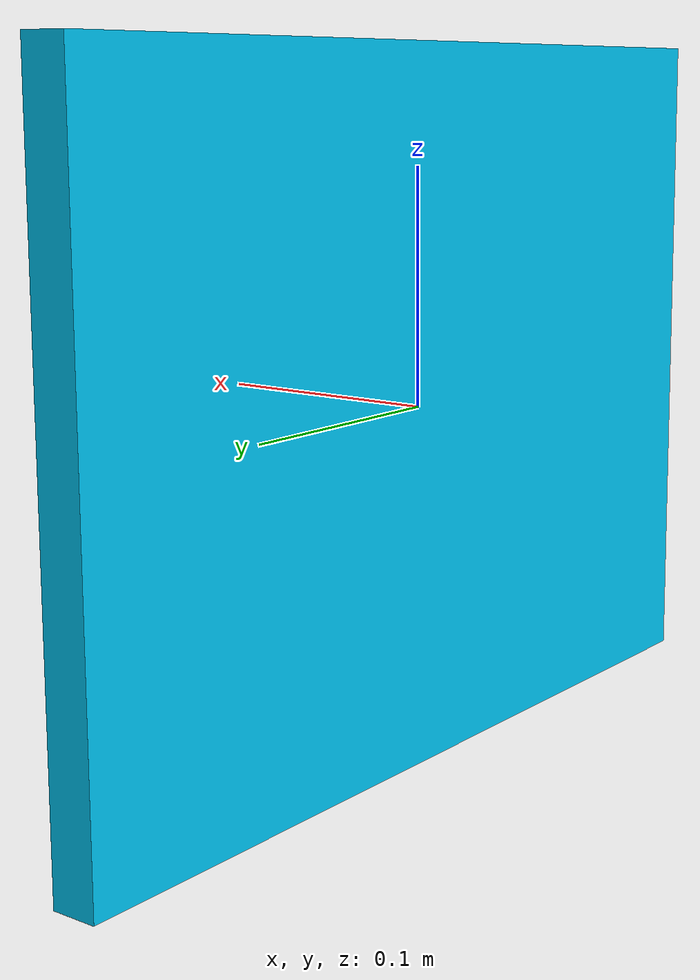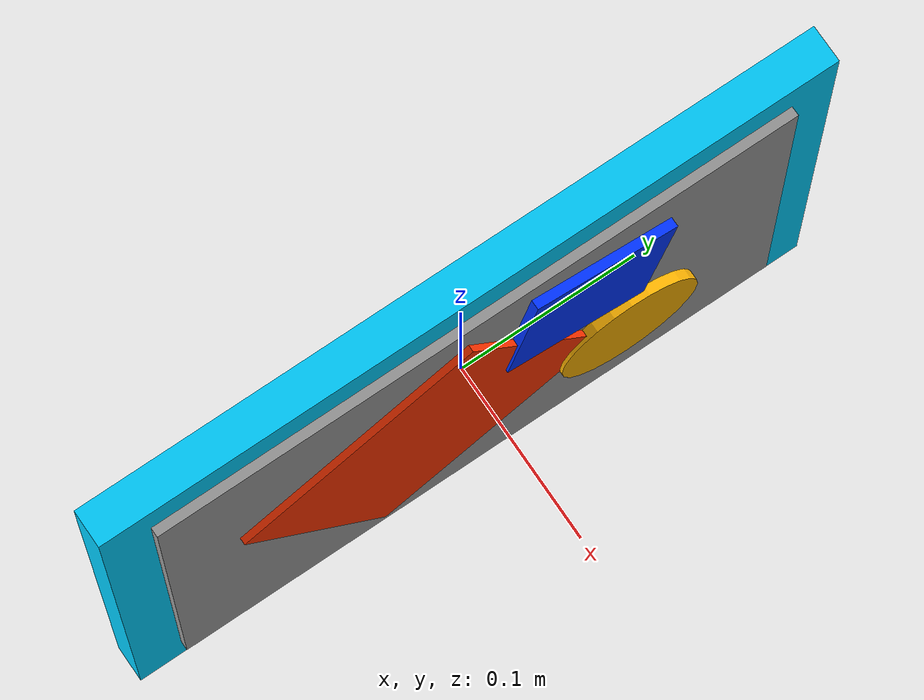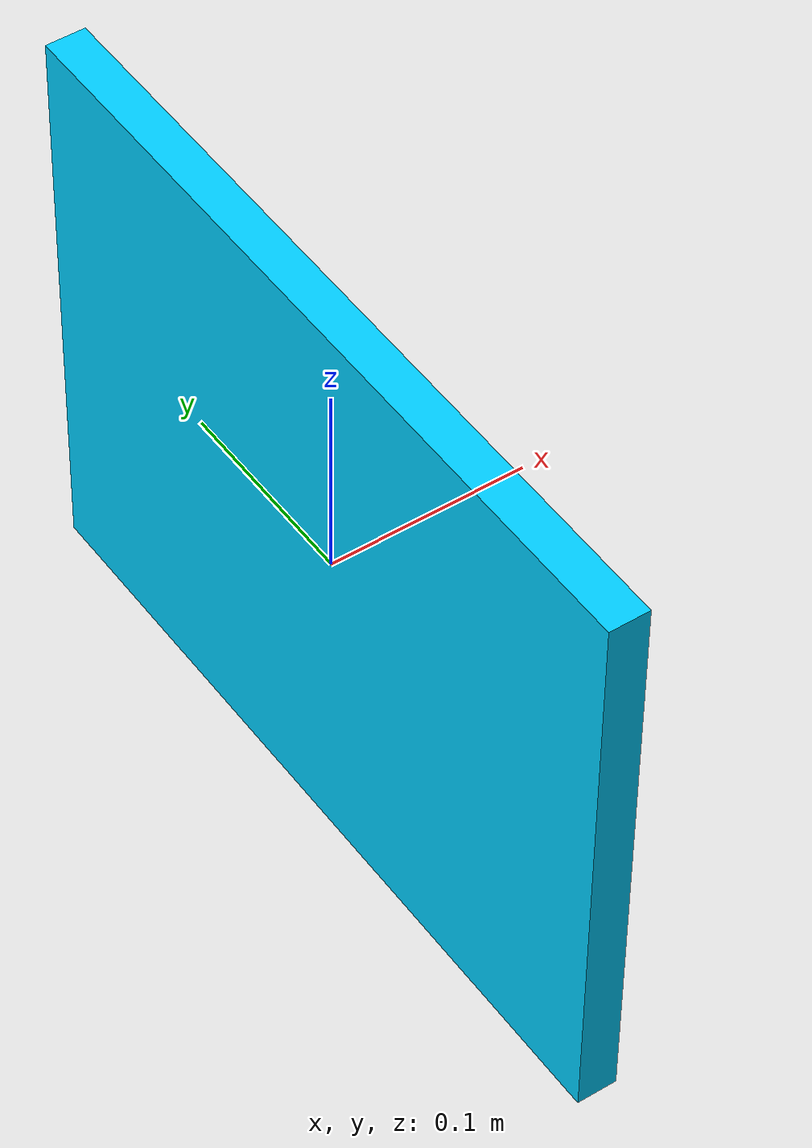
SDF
<?xml version='1.0'?>
<sdf version='1.7'>
  <model name='my_frame'>
    <link name='link'>
      <inertial>
        <mass>1</mass>
        <inertia>
          <ixx>0.166667</ixx>
          <ixy>0</ixy>
          <ixz>0</ixz>
          <iyy>0.166667</iyy>
          <iyz>0</iyz>
          <izz>0.166667</izz>
        </inertia>
        <pose>0 0 0 0 -0 0</pose>
      </inertial>
      <self_collide>0</self_collide>
      <enable_wind>0</enable_wind>
      <kinematic>0</kinematic>
      <pose>0 0 0 0 -0 0</pose>
      <gravity>0</gravity>
      <visual name='visual'>
        <geometry>
          <box>
            <size>0.02 0.4 0.3</size>
          </box>
        </geometry>
        <material>
          <script>
            <name>Gazebo/Grey</name>
            <uri>file://media/materials/scripts/gazebo.material</uri>
          </script>
          <shader type='pixel'>
            <normal_map>__default__</normal_map>
          </shader>
          <ambient>0 0.81 1 1</ambient>
          <diffuse>0.7 0.7 0.7 1</diffuse>
          <specular>0.01 0.01 0.01 1</specular>
          <emissive>0 0 0 1</emissive>
        </material>
        <pose>0 0 0 0 -0 0</pose>
        <transparency>0</transparency>
        <cast_shadows>1</cast_shadows>
      </visual>
      <collision name='collision'>
        <laser_retro>0</laser_retro>
        <max_contacts>10</max_contacts>
        <pose>0 0 0 0 -0 0</pose>
        <geometry>
          <box>
            <size>0.02 0.4 0.3</size>
          </box>
        </geometry>
        <surface>
          <friction>
            <ode>
              <mu>1</mu>
              <mu2>1</mu2>
              <fdir1>0 0 0</fdir1>
              <slip1>0</slip1>
              <slip2>0</slip2>
            </ode>
            <torsional>
              <coefficient>1</coefficient>
              <patch_radius>0</patch_radius>
              <surface_radius>0</surface_radius>
              <use_patch_radius>1</use_patch_radius>
              <ode>
                <slip>0</slip>
              </ode>
            </torsional>
          </friction>
          <bounce>
            <restitution_coefficient>0</restitution_coefficient>
            <threshold>1e+06</threshold>
          </bounce>
          <contact>
            <collide_without_contact>0</collide_without_contact>
            <collide_without_contact_bitmask>1</collide_without_contact_bitmask>
            <collide_bitmask>1</collide_bitmask>
            <ode>
              <soft_cfm>0</soft_cfm>
              <soft_erp>0.2</soft_erp>
              <kp>1e+13</kp>
              <kd>1</kd>
              <max_vel>0.01</max_vel>
              <min_depth>0</min_depth>
            </ode>
            <bullet>
              <split_impulse>1</split_impulse>
              <split_impulse_penetration_threshold>-0.01</split_impulse_penetration_threshold>
              <soft_cfm>0</soft_cfm>
              <soft_erp>0.2</soft_erp>
              <kp>1e+13</kp>
              <kd>1</kd>
            </bullet>
          </contact>
        </surface>
      </collision>
    </link>
    <link name='link_2'>
      <inertial>
        <mass>1</mass>
        <inertia>
          <ixx>0.145833</ixx>
          <ixy>0</ixy>
          <ixz>0</ixz>
          <iyy>0.145833</iyy>
          <iyz>0</iyz>
          <izz>0.125</izz>
        </inertia>
        <pose>0 0 0 0 -0 0</pose>
      </inertial>
      <pose>0.015889 0.084711 -0.037956 0 -0 0</pose>
      <gravity>0</gravity>
      <self_collide>0</self_collide>
      <kinematic>0</kinematic>
      <enable_wind>0</enable_wind>
      <visual name='visual'>
        <pose>0 0 0 0 1.5707 0</pose>
        <geometry>
          <cylinder>
            <radius>0.04</radius>
            <length>0.01</length>
          </cylinder>
        </geometry>
        <material>
          <lighting>1</lighting>
          <script>
            <uri>file://media/materials/scripts/gazebo.material</uri>
            <name>Gazebo/Grey</name>
          </script>
          <shader type='pixel'>
            <normal_map>__default__</normal_map>
          </shader>
          <ambient>0.99 0.7 0 1</ambient>
          <diffuse>0.7 0.7 0.7 1</diffuse>
          <specular>0.01 0.01 0.01 1</specular>
          <emissive>0 0 0 1</emissive>
        </material>
        <transparency>0</transparency>
        <cast_shadows>1</cast_shadows>
      </visual>
      <collision name='collision'>
        <laser_retro>0</laser_retro>
        <max_contacts>10</max_contacts>
        <pose>0 0 0 0 1.5707 0</pose>
        <geometry>
          <cylinder>
            <radius>0.04</radius>
            <length>0.01</length>
          </cylinder>
        </geometry>
        <surface>
          <friction>
            <ode>
              <mu>1</mu>
              <mu2>1</mu2>
              <fdir1>0 0 0</fdir1>
              <slip1>0</slip1>
              <slip2>0</slip2>
            </ode>
            <torsional>
              <coefficient>1</coefficient>
              <patch_radius>0</patch_radius>
              <surface_radius>0</surface_radius>
              <use_patch_radius>1</use_patch_radius>
              <ode>
                <slip>0</slip>
              </ode>
            </torsional>
          </friction>
          <bounce>
            <restitution_coefficient>0</restitution_coefficient>
            <threshold>1e+06</threshold>
          </bounce>
          <contact>
            <collide_without_contact>0</collide_without_contact>
            <collide_without_contact_bitmask>1</collide_without_contact_bitmask>
            <collide_bitmask>1</collide_bitmask>
            <ode>
              <soft_cfm>0</soft_cfm>
              <soft_erp>0.2</soft_erp>
              <kp>1e+13</kp>
              <kd>1</kd>
              <max_vel>0.01</max_vel>
              <min_depth>0</min_depth>
            </ode>
            <bullet>
              <split_impulse>1</split_impulse>
              <split_impulse_penetration_threshold>-0.01</split_impulse_penetration_threshold>
              <soft_cfm>0</soft_cfm>
              <soft_erp>0.2</soft_erp>
              <kp>1e+13</kp>
              <kd>1</kd>
            </bullet>
          </contact>
        </surface>
      </collision>
    </link>
    <link name='link_3'>
      <inertial>
        <mass>1</mass>
        <inertia>
          <ixx>0.166667</ixx>
          <ixy>0</ixy>
          <ixz>0</ixz>
          <iyy>0.166667</iyy>
          <iyz>0</iyz>
          <izz>0.166667</izz>
        </inertia>
        <pose>0 0 0 0 -0 0</pose>
      </inertial>
      <pose>0.013898 -0.032005 0 0 -0 0</pose>
      <gravity>0</gravity>
      <self_collide>0</self_collide>
      <kinematic>0</kinematic>
      <enable_wind>0</enable_wind>
      <visual name='visual'>
        <pose>0 0 0 0.54 -0 0</pose>
        <geometry>
          <box>
            <size>0.01 0.15 0.15</size>
          </box>
        </geometry>
        <material>
          <lighting>1</lighting>
          <script>
            <uri>file://media/materials/scripts/gazebo.material</uri>
            <name>Gazebo/Grey</name>
          </script>
          <shader type='pixel'>
            <normal_map>__default__</normal_map>
          </shader>
          <ambient>1 0.2 0 1</ambient>
          <diffuse>0.7 0.7 0.7 1</diffuse>
          <specular>0.01 0.01 0.01 1</specular>
          <emissive>0 0 0 1</emissive>
        </material>
        <transparency>0</transparency>
        <cast_shadows>1</cast_shadows>
      </visual>
      <collision name='collision'>
        <laser_retro>0</laser_retro>
        <max_contacts>10</max_contacts>
        <pose>0 0 0 0.54 -0 0</pose>
        <geometry>
          <box>
            <size>0.01 0.15 0.15</size>
          </box>
        </geometry>
        <surface>
          <friction>
            <ode>
              <mu>1</mu>
              <mu2>1</mu2>
              <fdir1>0 0 0</fdir1>
              <slip1>0</slip1>
              <slip2>0</slip2>
            </ode>
            <torsional>
              <coefficient>1</coefficient>
              <patch_radius>0</patch_radius>
              <surface_radius>0</surface_radius>
              <use_patch_radius>1</use_patch_radius>
              <ode>
                <slip>0</slip>
              </ode>
            </torsional>
          </friction>
          <bounce>
            <restitution_coefficient>0</restitution_coefficient>
            <threshold>1e+06</threshold>
          </bounce>
          <contact>
            <collide_without_contact>0</collide_without_contact>
            <collide_without_contact_bitmask>1</collide_without_contact_bitmask>
            <collide_bitmask>1</collide_bitmask>
            <ode>
              <soft_cfm>0</soft_cfm>
              <soft_erp>0.2</soft_erp>
              <kp>1e+13</kp>
              <kd>1</kd>
              <max_vel>0.01</max_vel>
              <min_depth>0</min_depth>
            </ode>
            <bullet>
              <split_impulse>1</split_impulse>
              <split_impulse_penetration_threshold>-0.01</split_impulse_penetration_threshold>
              <soft_cfm>0</soft_cfm>
              <soft_erp>0.2</soft_erp>
              <kp>1e+13</kp>
              <kd>1</kd>
            </bullet>
          </contact>
        </surface>
      </collision>
    </link>
    <link name='link_3_clone'>
      <inertial>
        <mass>1</mass>
        <inertia>
          <ixx>0.166667</ixx>
          <ixy>0</ixy>
          <ixz>0</ixz>
          <iyy>0.166667</iyy>
          <iyz>0</iyz>
          <izz>0.166667</izz>
        </inertia>
        <pose>0 0 0 0 -0 0</pose>
      </inertial>
      <pose>0.015334 0.059714 0.061338 0 -0 0</pose>
      <gravity>0</gravity>
      <self_collide>0</self_collide>
      <kinematic>0</kinematic>
      <enable_wind>0</enable_wind>
      <visual name='visual'>
        <pose>0 0 0 -0.2 0 0</pose>
        <geometry>
          <box>
            <size>0.01 0.08 0.08</size>
          </box>
        </geometry>
        <material>
          <lighting>1</lighting>
          <script>
            <uri>file://media/materials/scripts/gazebo.material</uri>
            <name>Gazebo/Grey</name>
          </script>
          <shader type='pixel'>
            <normal_map>__default__</normal_map>
          </shader>
          <ambient>0 0.2 1 1</ambient>
          <diffuse>0.7 0.7 0.7 1</diffuse>
          <specular>0.01 0.01 0.01 1</specular>
          <emissive>0 0 0 1</emissive>
        </material>
        <transparency>0</transparency>
        <cast_shadows>1</cast_shadows>
      </visual>
      <collision name='collision'>
        <laser_retro>0</laser_retro>
        <max_contacts>10</max_contacts>
        <pose>0 0 0 -0.2 0 0</pose>
        <geometry>
          <box>
            <size>0.01 0.08 0.08</size>
          </box>
        </geometry>
        <surface>
          <friction>
            <ode>
              <mu>1</mu>
              <mu2>1</mu2>
              <fdir1>0 0 0</fdir1>
              <slip1>0</slip1>
              <slip2>0</slip2>
            </ode>
            <torsional>
              <coefficient>1</coefficient>
              <patch_radius>0</patch_radius>
              <surface_radius>0</surface_radius>
              <use_patch_radius>1</use_patch_radius>
              <ode>
                <slip>0</slip>
              </ode>
            </torsional>
          </friction>
          <bounce>
            <restitution_coefficient>0</restitution_coefficient>
            <threshold>1e+06</threshold>
          </bounce>
          <contact>
            <collide_without_contact>0</collide_without_contact>
            <collide_without_contact_bitmask>1</collide_without_contact_bitmask>
            <collide_bitmask>1</collide_bitmask>
            <ode>
              <soft_cfm>0</soft_cfm>
              <soft_erp>0.2</soft_erp>
              <kp>1e+13</kp>
              <kd>1</kd>
              <max_vel>0.01</max_vel>
              <min_depth>0</min_depth>
            </ode>
            <bullet>
              <split_impulse>1</split_impulse>
              <split_impulse_penetration_threshold>-0.01</split_impulse_penetration_threshold>
              <soft_cfm>0</soft_cfm>
              <soft_erp>0.2</soft_erp>
              <kp>1e+13</kp>
              <kd>1</kd>
            </bullet>
          </contact>
        </surface>
      </collision>
    </link>
    <link name='link_clone'>
      <inertial>
        <mass>1</mass>
        <inertia>
          <ixx>0.166667</ixx>
          <ixy>0</ixy>
          <ixz>0</ixz>
          <iyy>0.166667</iyy>
          <iyz>0</iyz>
          <izz>0.166667</izz>
        </inertia>
        <pose>0 0 0 0 -0 0</pose>
      </inertial>
      <self_collide>0</self_collide>
      <enable_wind>0</enable_wind>
      <kinematic>0</kinematic>
      <pose>0.005108 0.000801 0 0 -0 0</pose>
      <gravity>0</gravity>
      <visual name='visual'>
        <geometry>
          <box>
            <size>0.02 0.35 0.25</size>
          </box>
        </geometry>
        <material>
          <script>
            <name>Gazebo/Grey</name>
            <uri>file://media/materials/scripts/gazebo.material</uri>
          </script>
          <shader type='pixel'>
            <normal_map>__default__</normal_map>
          </shader>
          <ambient>1 1 1 1</ambient>
          <diffuse>1 1 1 1</diffuse>
          <specular>0.01 0.01 0.01 1</specular>
          <emissive>0 0 0 1</emissive>
        </material>
        <pose>0 0 0 0 -0 0</pose>
        <transparency>0</transparency>
        <cast_shadows>1</cast_shadows>
      </visual>
      <collision name='collision'>
        <laser_retro>0</laser_retro>
        <max_contacts>10</max_contacts>
        <pose>0 0 0 0 -0 0</pose>
        <geometry>
          <box>
            <size>0.02 0.4 0.3</size>
          </box>
        </geometry>
        <surface>
          <friction>
            <ode>
              <mu>1</mu>
              <mu2>1</mu2>
              <fdir1>0 0 0</fdir1>
              <slip1>0</slip1>
              <slip2>0</slip2>
            </ode>
            <torsional>
              <coefficient>1</coefficient>
              <patch_radius>0</patch_radius>
              <surface_radius>0</surface_radius>
              <use_patch_radius>1</use_patch_radius>
              <ode>
                <slip>0</slip>
              </ode>
            </torsional>
          </friction>
          <bounce>
            <restitution_coefficient>0</restitution_coefficient>
            <threshold>1e+06</threshold>
          </bounce>
          <contact>
            <collide_without_contact>0</collide_without_contact>
            <collide_without_contact_bitmask>1</collide_without_contact_bitmask>
            <collide_bitmask>1</collide_bitmask>
            <ode>
              <soft_cfm>0</soft_cfm>
              <soft_erp>0.2</soft_erp>
              <kp>1e+13</kp>
              <kd>1</kd>
              <max_vel>0.01</max_vel>
              <min_depth>0</min_depth>
            </ode>
            <bullet>
              <split_impulse>1</split_impulse>
              <split_impulse_penetration_threshold>-0.01</split_impulse_penetration_threshold>
              <soft_cfm>0</soft_cfm>
              <soft_erp>0.2</soft_erp>
              <kp>1e+13</kp>
              <kd>1</kd>
            </bullet>
          </contact>
        </surface>
      </collision>
    </link>
    <static>1</static>
    <allow_auto_disable>1</allow_auto_disable>
  </model>
</sdf>
